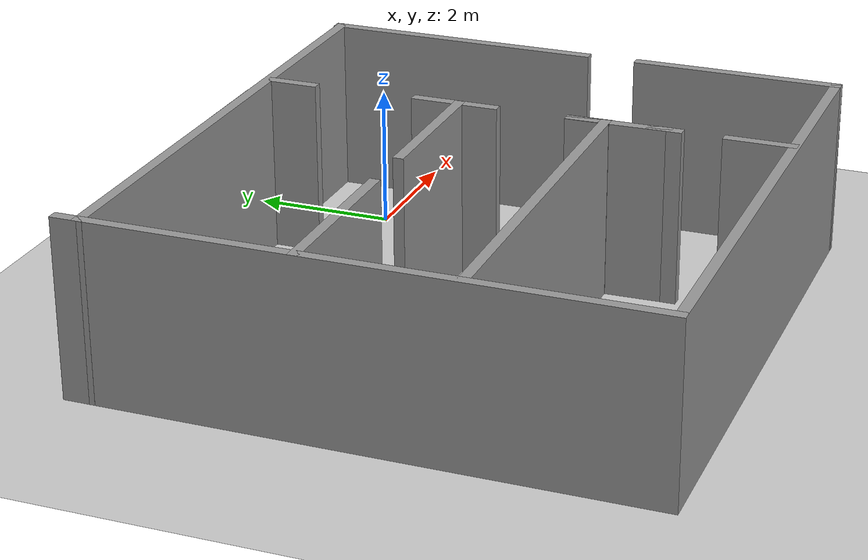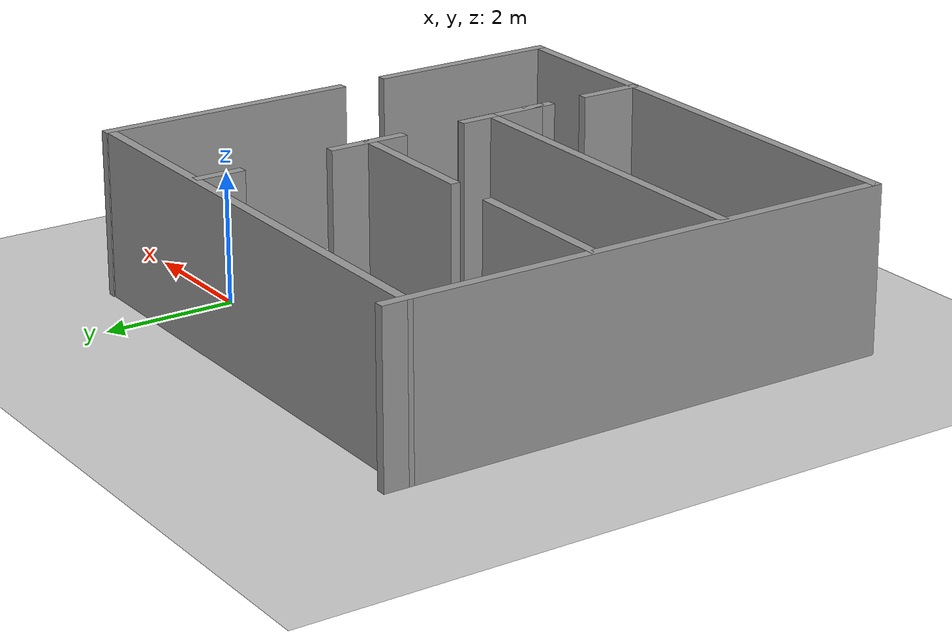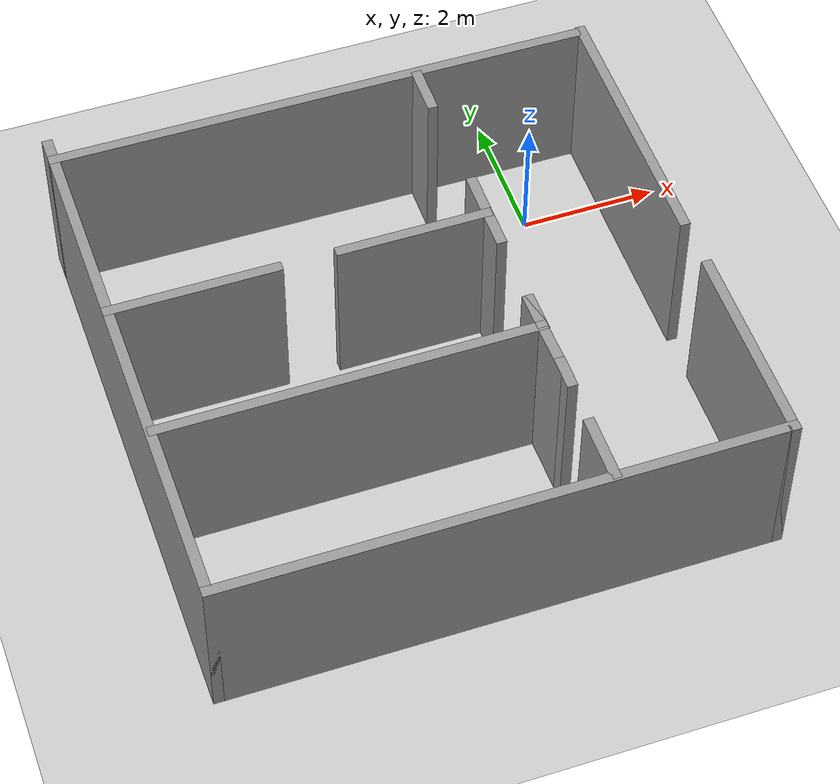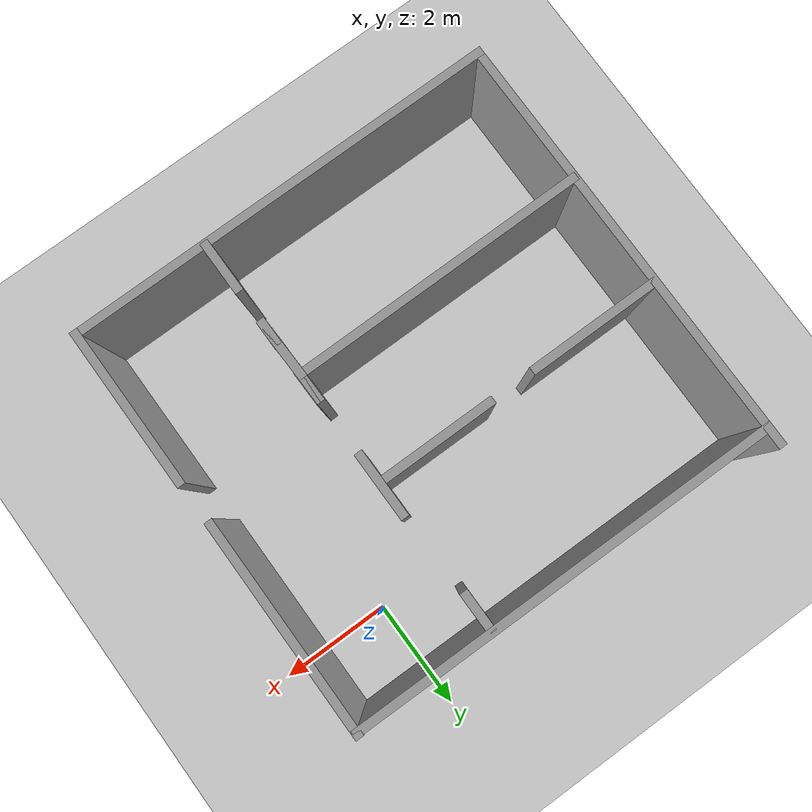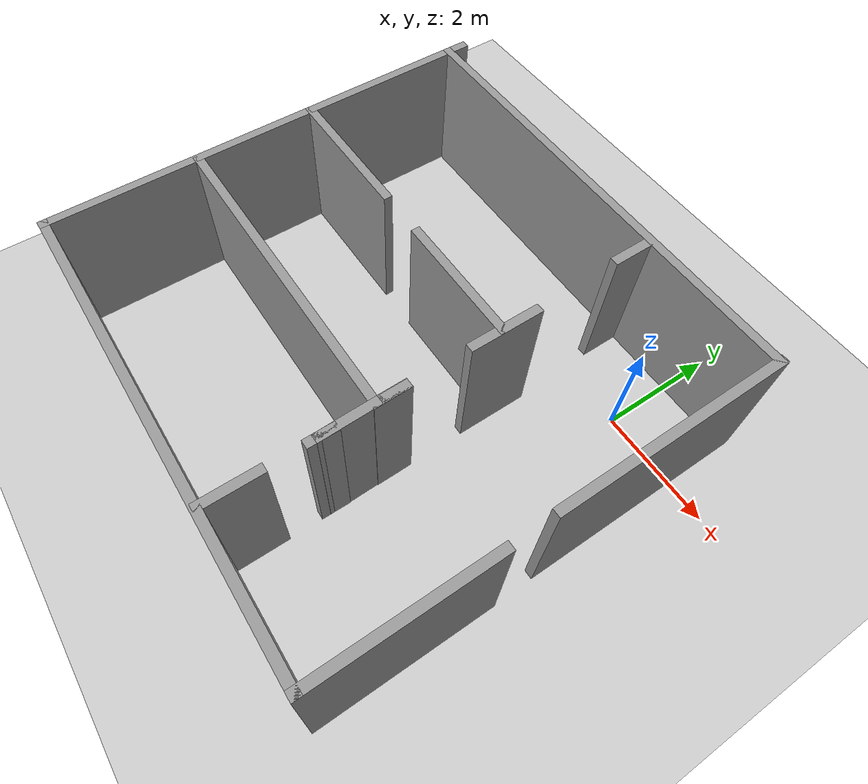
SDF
<sdf version="1.6">
 <world name="default">
  <light name="sun" type="directional">
   <pose>0 0 10 0 -0 0</pose>
   <diffuse>0.8 0.8 0.8 1</diffuse>
   <specular>0.2 0.2 0.2 1</specular>
   <attenuation>
    <range>1000</range>
    <constant>0.9</constant>
    <linear>0.01</linear>
    <quadratic>0.001</quadratic>
   </attenuation>
   <direction>-0.5 0.1 -0.9</direction>
  </light>
  <model name="ground_plane">
   <static>1</static>
   <link name="link">
    <collision name="collision">
     <geometry><plane><normal>0 0 1</normal><size>100 100</size></plane></geometry>
     <surface>
      <contact><collide_bitmask>65535</collide_bitmask></contact>
      <friction><ode><mu>100</mu><mu2>50</mu2></ode></friction>
     </surface>
    </collision>
    <visual name="visual">
     <cast_shadows>0</cast_shadows>
     <geometry><plane><normal>0 0 1</normal><size>100 100</size></plane></geometry>
     <material>
      <script><uri>file://media/materials/scripts/gazebo.material</uri><name>Gazebo/Grey</name></script>
     </material>
    </visual>
   </link>
  </model>
  <gravity>0 0 -9.8</gravity>
  <magnetic_field>6e-06 2.3e-05 -4.2e-05</magnetic_field>
  <atmosphere type="adiabatic"/>
  <physics name="default_physics" default="0" type="ode">
   <max_step_size>0.001</max_step_size>
   <real_time_factor>1</real_time_factor>
   <real_time_update_rate>1000</real_time_update_rate>
  </physics>
  <scene><ambient>0.4 0.4 0.4 1</ambient><background>0.7 0.7 0.7 1</background><shadows>1</shadows></scene>
  <spherical_coordinates>
   <surface_model>EARTH_WGS84</surface_model>
   <latitude_deg>0</latitude_deg>
   <longitude_deg>0</longitude_deg>
   <elevation>0</elevation>
   <heading_deg>0</heading_deg>
  </spherical_coordinates>
  <model name="house">
   <pose>-2.67718 -2.39763 0 0 -0 0</pose>
   <link name="Wall_59">
    <collision name="Wall_59_Collision">
     <geometry><box><size>8 0.15 2.5</size></box></geometry>
     <pose>0 0 1.25 0 -0 0</pose>
    </collision>
    <visual name="Wall_59_Visual">
     <pose>0 0 1.25 0 -0 0</pose>
     <geometry><box><size>8 0.15 2.5</size></box></geometry>
     <material>
      <script><uri>file://media/materials/scripts/gazebo.material</uri><name>Gazebo/Grey</name></script>
      <ambient>1 1 1 1</ambient>
     </material>
     <meta><layer>0</layer></meta>
    </visual>
    <pose>-3.92483 0 0 0 -0 -1.5708</pose>
   </link>
   <link name="Wall_60">
    <collision name="Wall_60_Collision">
     <geometry><box><size>8 0.15 2.5</size></box></geometry>
     <pose>0 0 1.25 0 -0 0</pose>
    </collision>
    <visual name="Wall_60_Visual">
     <pose>0 0 1.25 0 -0 0</pose>
     <geometry><box><size>8 0.15 2.5</size></box></geometry>
     <material>
      <script><uri>file://media/materials/scripts/gazebo.material</uri><name>Gazebo/Grey</name></script>
      <ambient>1 1 1 1</ambient>
     </material>
     <meta><layer>0</layer></meta>
    </visual>
    <pose>0.000167 -3.925 0 0 -0 0</pose>
   </link>
   <link name="Wall_61">
    <collision name="Wall_61_Collision">
     <geometry><box><size>3 0.15 2.5</size></box></geometry>
     <pose>0 0 1.25 0 -0 0</pose>
    </collision>
    <visual name="Wall_61_Visual">
     <pose>0 0 1.25 0 -0 0</pose>
     <geometry><box><size>3 0.15 2.5</size></box></geometry>
     <material>
      <script><uri>file://media/materials/scripts/gazebo.material</uri><name>Gazebo/Grey</name></script>
      <ambient>1 1 1 1</ambient>
     </material>
     <meta><layer>0</layer></meta>
    </visual>
    <pose>3.92517 -2.5 0 0 -0 1.5708</pose>
   </link>
   <link name="Wall_63">
    <collision name="Wall_63_Collision">
     <geometry><box><size>4 0.15 2.5</size></box></geometry>
     <pose>0 0 1.25 0 -0 0</pose>
    </collision>
    <visual name="Wall_63_Visual">
     <pose>0 0 1.25 0 -0 0</pose>
     <geometry><box><size>4 0.15 2.5</size></box></geometry>
     <material>
      <script><uri>file://media/materials/scripts/gazebo.material</uri><name>Gazebo/Grey</name></script>
      <ambient>1 1 1 1</ambient>
     </material>
     <meta><layer>0</layer></meta>
    </visual>
    <pose>3.90768 1.68251 0 0 -0 1.5708</pose>
   </link>
   <link name="Wall_64">
    <collision name="Wall_64_Collision">
     <geometry><box><size>7.9651 0.15 2.5</size></box></geometry>
     <pose>0 0 1.25 0 -0 0</pose>
    </collision>
    <visual name="Wall_64_Visual">
     <pose>0 0 1.25 0 -0 0</pose>
     <geometry><box><size>7.9651 0.15 2.5</size></box></geometry>
     <material>
      <script><uri>file://media/materials/scripts/gazebo.material</uri><name>Gazebo/Grey</name></script>
      <ambient>1 1 1 1</ambient>
     </material>
     <meta><layer>0</layer></meta>
    </visual>
    <pose>-0.017323 3.60751 0 0 -0 3.13712</pose>
   </link>
   <link name="Wall_66">
    <collision name="Wall_66_Collision">
     <geometry><box><size>1 0.15 2.5</size></box></geometry>
     <pose>0 0 1.25 0 -0 0</pose>
    </collision>
    <visual name="Wall_66_Visual">
     <pose>0 0 1.25 0 -0 0</pose>
     <geometry><box><size>1 0.15 2.5</size></box></geometry>
     <material>
      <script><uri>file://media/materials/scripts/gazebo.material</uri><name>Gazebo/Grey</name></script>
      <ambient>1 1 1 1</ambient>
     </material>
     <meta><layer>0</layer></meta>
    </visual>
    <pose>1.46211 -3.46806 0 0 -0 1.5708</pose>
   </link>
   <link name="Wall_68">
    <collision name="Wall_68_Collision">
     <geometry><box><size>1.01023 0.15 2.5</size></box></geometry>
     <pose>0 0 1.25 0 -0 0</pose>
    </collision>
    <visual name="Wall_68_Visual">
     <pose>0 0 1.25 0 -0 0</pose>
     <geometry><box><size>1.01023 0.15 2.5</size></box></geometry>
     <material>
      <script><uri>file://media/materials/scripts/gazebo.material</uri><name>Gazebo/Grey</name></script>
      <ambient>1 1 1 1</ambient>
     </material>
     <meta><layer>0</layer></meta>
    </visual>
    <pose>1.45211 -1.76306 0 0 -0 1.59405</pose>
   </link>
   <link name="Wall_69">
    <collision name="Wall_69_Collision">
     <geometry><box><size>5.48001 0.15 2.5</size></box></geometry>
     <pose>0 0 1.25 0 -0 0</pose>
    </collision>
    <visual name="Wall_69_Visual">
     <pose>0 0 1.25 0 -0 0</pose>
     <geometry><box><size>5.48001 0.15 2.5</size></box></geometry>
     <material>
      <script><uri>file://media/materials/scripts/gazebo.material</uri><name>Gazebo/Grey</name></script>
      <ambient>1 1 1 1</ambient>
     </material>
     <meta><layer>0</layer></meta>
    </visual>
    <pose>-1.22289 -1.33806 0 0 -0 -3.13972</pose>
   </link>
   <link name="Wall_71">
    <collision name="Wall_71_Collision">
     <geometry><box><size>0.5 0.15 2.5</size></box></geometry>
     <pose>0 0 1.25 0 -0 0</pose>
    </collision>
    <visual name="Wall_71_Visual">
     <pose>0 0 1.25 0 -0 0</pose>
     <geometry><box><size>0.5 0.15 2.5</size></box></geometry>
     <material>
      <script><uri>file://media/materials/scripts/gazebo.material</uri><name>Gazebo/Grey</name></script>
      <ambient>1 1 1 1</ambient>
     </material>
     <meta><layer>0</layer></meta>
    </visual>
    <pose>1.46214 -2.16333 0 0 -0 -1.5708</pose>
   </link>
   <link name="Wall_79">
    <collision name="Wall_79_Collision">
     <geometry><box><size>1.25 0.15 2.5</size></box></geometry>
     <pose>0 0 1.25 0 -0 0</pose>
    </collision>
    <visual name="Wall_79_Visual">
     <pose>0 0 1.25 0 -0 0</pose>
     <geometry><box><size>1.25 0.15 2.5</size></box></geometry>
     <material>
      <script><uri>file://media/materials/scripts/gazebo.material</uri><name>Gazebo/Grey</name></script>
      <ambient>1 1 1 1</ambient>
     </material>
     <meta><layer>0</layer></meta>
    </visual>
    <pose>1.43524 0.808899 0 0 -0 -1.5708</pose>
   </link>
   <link name="Wall_81">
    <collision name="Wall_81_Collision">
     <geometry><box><size>0.622007 0.15 2.5</size></box></geometry>
     <pose>0 0 1.25 0 -0 0</pose>
    </collision>
    <visual name="Wall_81_Visual">
     <pose>0 0 1.25 0 -0 0</pose>
     <geometry><box><size>0.622007 0.15 2.5</size></box></geometry>
     <material>
      <script><uri>file://media/materials/scripts/gazebo.material</uri><name>Gazebo/Grey</name></script>
      <ambient>1 1 1 1</ambient>
     </material>
     <meta><layer>0</layer></meta>
    </visual>
    <pose>1.43867 -1.09708 0 0 -0 -1.55624</pose>
   </link>
   <link name="Wall_82">
    <collision name="Wall_82_Collision">
     <geometry><box><size>0.622007 0.15 2.5</size></box></geometry>
     <pose>0 0 1.25 0 -0 0</pose>
    </collision>
    <visual name="Wall_82_Visual">
     <pose>0 0 1.25 0 -0 0</pose>
     <geometry><box><size>0.622007 0.15 2.5</size></box></geometry>
     <material>
      <script><uri>file://media/materials/scripts/gazebo.material</uri><name>Gazebo/Grey</name></script>
      <ambient>1 1 1 1</ambient>
     </material>
     <meta><layer>0</layer></meta>
    </visual>
    <pose>1.44867 -1.09708 0 0 -0 1.58536</pose>
   </link>
   <link name="Wall_85">
    <collision name="Wall_85_Collision">
     <geometry><box><size>0.75 0.15 2.5</size></box></geometry>
     <pose>0 0 1.25 0 -0 0</pose>
    </collision>
    <visual name="Wall_85_Visual">
     <pose>0 0 1.25 0 -0 0</pose>
     <geometry><box><size>0.75 0.15 2.5</size></box></geometry>
     <material>
      <script><uri>file://media/materials/scripts/gazebo.material</uri><name>Gazebo/Grey</name></script>
      <ambient>1 1 1 1</ambient>
     </material>
     <meta><layer>0</layer></meta>
    </visual>
    <pose>1.37994 3.22838 0 0 -0 1.5708</pose>
   </link>
   <link name="Wall_88">
    <collision name="Wall_88_Collision">
     <geometry><box><size>2.25 0.15 2.5</size></box></geometry>
     <pose>0 0 1.25 0 -0 0</pose>
    </collision>
    <visual name="Wall_88_Visual">
     <pose>0 0 1.25 0 -0 0</pose>
     <geometry><box><size>2.25 0.15 2.5</size></box></geometry>
     <material>
      <script><uri>file://media/materials/scripts/gazebo.material</uri><name>Gazebo/Grey</name></script>
      <ambient>1 1 1 1</ambient>
     </material>
     <meta><layer>0</layer></meta>
    </visual>
    <pose>0.376101 0.761417 0 0 -0 3.14159</pose>
   </link>
   <link name="Wall_94">
    <collision name="Wall_94_Collision">
     <geometry><box><size>2.5 0.15 2.5</size></box></geometry>
     <pose>0 0 1.25 0 -0 0</pose>
    </collision>
    <visual name="Wall_94_Visual">
     <pose>0 0 1.25 0 -0 0</pose>
     <geometry><box><size>2.5 0.15 2.5</size></box></geometry>
     <material>
      <script><uri>file://media/materials/scripts/gazebo.material</uri><name>Gazebo/Grey</name></script>
      <ambient>1 1 1 1</ambient>
     </material>
     <meta><layer>0</layer></meta>
    </visual>
    <pose>-2.74854 0.761504 0 0 -0 3.14159</pose>
   </link>
   <static>1</static>
  </model>
 </world>
</sdf>
